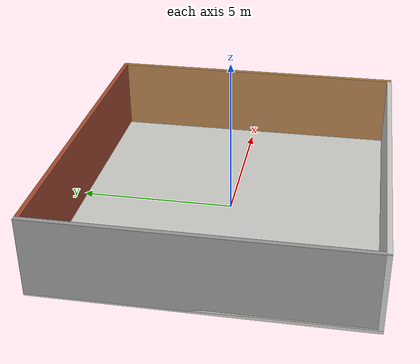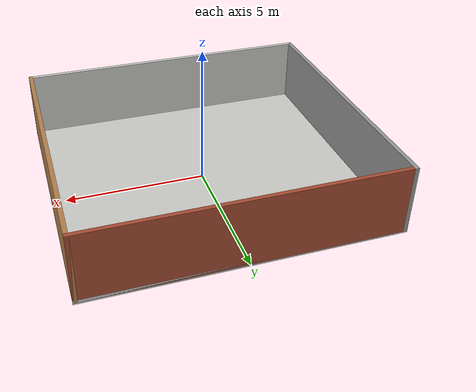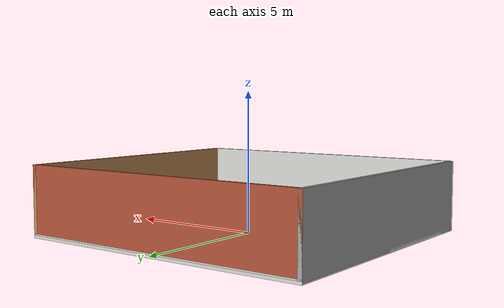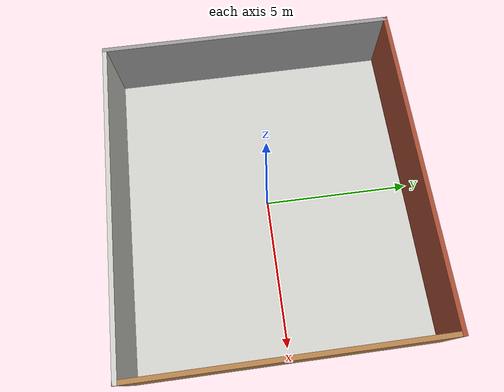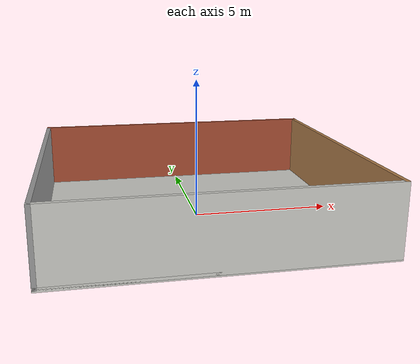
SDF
<?xml version='1.0'?>
<sdf version='1.6'>
  <model name='rwLab_old'>
    <link name='Floor_1'>
      <pose frame=''>0 0 0 0 -0 0</pose>
      <self_collide>0</self_collide>
      <kinematic>0</kinematic>
      <gravity>1</gravity>
      <inertial>
        <mass>1</mass>
        <pose frame=''>0 0 0 0 -0 0</pose>
        <inertia>
          <ixx>1</ixx>
          <ixy>0</ixy>
          <ixz>0</ixz>
          <iyy>1</iyy>
          <iyz>0</iyz>
          <izz>1</izz>
        </inertia>
      </inertial>
      <visual name='ModelPreview_1::Floor_1::visual_1'>
        <pose frame=''>0 0 0.05 0 -0 0</pose>
        <geometry>
          <box>
            <size>11 10 0.1</size>
          </box>
        </geometry>
        <material>
          <script>
            <uri>file://media/materials/scripts/gazebo.material</uri>
            <name>Gazebo/CeilingTiled</name>
          </script>
          <ambient>1 1 1 1</ambient>
          <diffuse>1 1 1 1</diffuse>
          <specular>0 0 0 1</specular>
          <emissive>0 0 0 1</emissive>
          <shader type='vertex'>
            <normal_map>__default__</normal_map>
          </shader>
        </material>
        <meta>
          <layer>0</layer>
        </meta>
        <cast_shadows>1</cast_shadows>
        <transparency>0</transparency>
      </visual>
      <visual name='ModelPreview_1::Floor_1::visual_2'>
        <pose frame=''>0 0 0.001 0 -0 0</pose>
        <geometry>
          <box>
            <size>11 10 0.1</size>
          </box>
        </geometry>
        <material>
          <script>
            <uri>file://media/materials/scripts/gazebo.material</uri>
            <name>Gazebo/CeilingTiled</name>
          </script>
          <ambient>1 1 1 1</ambient>
          <diffuse>1 1 1 1</diffuse>
          <specular>0 0 0 1</specular>
          <emissive>0 0 0 1</emissive>
          <shader type='vertex'>
            <normal_map>__default__</normal_map>
          </shader>
        </material>
        <meta>
          <layer>0</layer>
        </meta>
        <cast_shadows>1</cast_shadows>
        <transparency>0</transparency>
      </visual>
      <visual name='Floor_1_Visual'>
        <pose frame=''>0 0 0.001 0 -0 0</pose>
        <geometry>
          <box>
            <size>11 10 0.001</size>
          </box>
        </geometry>
        <material>
          <script>
            <uri>file://media/materials/scripts/gazebo.material</uri>
            <name>Gazebo/CeilingTiled</name>
          </script>
          <ambient>1 1 1 1</ambient>
          <diffuse>1 1 1 1</diffuse>
          <specular>0 0 0 1</specular>
          <emissive>0 0 0 1</emissive>
          <shader type='vertex'>
            <normal_map>__default__</normal_map>
          </shader>
        </material>
        <meta>
          <layer>0</layer>
        </meta>
        <cast_shadows>1</cast_shadows>
        <transparency>0</transparency>
      </visual>
      <collision name='Floor_1_Collision'>
        <laser_retro>0</laser_retro>
        <max_contacts>10</max_contacts>
        <pose frame=''>0 0 0.001 0 -0 0</pose>
        <geometry>
          <box>
            <size>11 10 0.001</size>
          </box>
        </geometry>
        <surface>
          <friction>
            <ode>
              <mu>1</mu>
              <mu2>1</mu2>
              <fdir1>0 0 0</fdir1>
              <slip1>0</slip1>
              <slip2>0</slip2>
            </ode>
            <torsional>
              <coefficient>1</coefficient>
              <patch_radius>0</patch_radius>
              <surface_radius>0</surface_radius>
              <use_patch_radius>1</use_patch_radius>
              <ode>
                <slip>0</slip>
              </ode>
            </torsional>
          </friction>
          <bounce>
            <restitution_coefficient>0</restitution_coefficient>
            <threshold>1e+06</threshold>
          </bounce>
          <contact>
            <collide_without_contact>0</collide_without_contact>
            <collide_without_contact_bitmask>1</collide_without_contact_bitmask>
            <collide_bitmask>1</collide_bitmask>
            <ode>
              <soft_cfm>0</soft_cfm>
              <soft_erp>0.2</soft_erp>
              <kp>1e+13</kp>
              <kd>1</kd>
              <max_vel>0.01</max_vel>
              <min_depth>0</min_depth>
            </ode>
            <bullet>
              <split_impulse>1</split_impulse>
              <split_impulse_penetration_threshold>-0.01</split_impulse_penetration_threshold>
              <soft_cfm>0</soft_cfm>
              <soft_erp>0.2</soft_erp>
              <kp>1e+13</kp>
              <kd>1</kd>
            </bullet>
          </contact>
        </surface>
      </collision>
    </link>
    <link name='Wall_12'>
      <pose frame=''>-5.425 0 0 0 -0 1.5708</pose>
      <self_collide>0</self_collide>
      <kinematic>0</kinematic>
      <visual name='Wall_12_Visual'>
        <pose frame=''>0 0 1.25 0 -0 0</pose>
        <geometry>
          <box>
            <size>10 0.15 2.5</size>
          </box>
        </geometry>
        <material>
          <script>
            <uri>file://media/materials/scripts/gazebo.material</uri>
            <name>Gazebo/Grey</name>
          </script>
          <ambient>1 1 1 1</ambient>
          <diffuse>0.7 0.7 0.7 1</diffuse>
          <specular>0.01 0.01 0.01 1</specular>
          <emissive>0 0 0 1</emissive>
        </material>
        <meta>
          <layer>0</layer>
        </meta>
        <cast_shadows>1</cast_shadows>
        <transparency>0</transparency>
      </visual>
      <collision name='Wall_12_Collision'>
        <laser_retro>0</laser_retro>
        <max_contacts>10</max_contacts>
        <pose frame=''>0 0 1.25 0 -0 0</pose>
        <geometry>
          <box>
            <size>10 0.15 2.5</size>
          </box>
        </geometry>
        <surface>
          <friction>
            <ode>
              <mu>1</mu>
              <mu2>1</mu2>
              <fdir1>0 0 0</fdir1>
              <slip1>0</slip1>
              <slip2>0</slip2>
            </ode>
            <torsional>
              <coefficient>1</coefficient>
              <patch_radius>0</patch_radius>
              <surface_radius>0</surface_radius>
              <use_patch_radius>1</use_patch_radius>
              <ode>
                <slip>0</slip>
              </ode>
            </torsional>
          </friction>
          <bounce>
            <restitution_coefficient>0</restitution_coefficient>
            <threshold>1e+06</threshold>
          </bounce>
          <contact>
            <collide_without_contact>0</collide_without_contact>
            <collide_without_contact_bitmask>1</collide_without_contact_bitmask>
            <collide_bitmask>1</collide_bitmask>
            <ode>
              <soft_cfm>0</soft_cfm>
              <soft_erp>0.2</soft_erp>
              <kp>1e+13</kp>
              <kd>1</kd>
              <max_vel>0.01</max_vel>
              <min_depth>0</min_depth>
            </ode>
            <bullet>
              <split_impulse>1</split_impulse>
              <split_impulse_penetration_threshold>-0.01</split_impulse_penetration_threshold>
              <soft_cfm>0</soft_cfm>
              <soft_erp>0.2</soft_erp>
              <kp>1e+13</kp>
              <kd>1</kd>
            </bullet>
          </contact>
        </surface>
      </collision>
    </link>
    <link name='Wall_13'>
      <pose frame=''>0 4.925 0 0 -0 0</pose>
      <self_collide>0</self_collide>
      <kinematic>0</kinematic>
      <visual name='Wall_13_Visual'>
        <pose frame=''>0 0 1.25 0 -0 0</pose>
        <geometry>
          <box>
            <size>11 0.15 2.5</size>
          </box>
        </geometry>
        <material>
          <script>
            <uri>file://media/materials/scripts/gazebo.material</uri>
            <name>Gazebo/Bricks</name>
          </script>
          <ambient>1 1 1 1</ambient>
          <diffuse>1 1 1 1</diffuse>
          <specular>0.2 0.2 0.2 1</specular>
          <emissive>0 0 0 1</emissive>
        </material>
        <meta>
          <layer>0</layer>
        </meta>
        <cast_shadows>1</cast_shadows>
        <transparency>0</transparency>
      </visual>
      <collision name='Wall_13_Collision'>
        <laser_retro>0</laser_retro>
        <max_contacts>10</max_contacts>
        <pose frame=''>0 0 1.25 0 -0 0</pose>
        <geometry>
          <box>
            <size>11 0.15 2.5</size>
          </box>
        </geometry>
        <surface>
          <friction>
            <ode>
              <mu>1</mu>
              <mu2>1</mu2>
              <fdir1>0 0 0</fdir1>
              <slip1>0</slip1>
              <slip2>0</slip2>
            </ode>
            <torsional>
              <coefficient>1</coefficient>
              <patch_radius>0</patch_radius>
              <surface_radius>0</surface_radius>
              <use_patch_radius>1</use_patch_radius>
              <ode>
                <slip>0</slip>
              </ode>
            </torsional>
          </friction>
          <bounce>
            <restitution_coefficient>0</restitution_coefficient>
            <threshold>1e+06</threshold>
          </bounce>
          <contact>
            <collide_without_contact>0</collide_without_contact>
            <collide_without_contact_bitmask>1</collide_without_contact_bitmask>
            <collide_bitmask>1</collide_bitmask>
            <ode>
              <soft_cfm>0</soft_cfm>
              <soft_erp>0.2</soft_erp>
              <kp>1e+13</kp>
              <kd>1</kd>
              <max_vel>0.01</max_vel>
              <min_depth>0</min_depth>
            </ode>
            <bullet>
              <split_impulse>1</split_impulse>
              <split_impulse_penetration_threshold>-0.01</split_impulse_penetration_threshold>
              <soft_cfm>0</soft_cfm>
              <soft_erp>0.2</soft_erp>
              <kp>1e+13</kp>
              <kd>1</kd>
            </bullet>
          </contact>
        </surface>
      </collision>
    </link>
    <link name='Wall_14'>
      <pose frame=''>5.425 0 0 0 0 -1.5708</pose>
      <self_collide>0</self_collide>
      <kinematic>0</kinematic>
      <visual name='Wall_14_Visual'>
        <pose frame=''>0 0 1.25 0 -0 0</pose>
        <geometry>
          <box>
            <size>10 0.15 2.5</size>
          </box>
        </geometry>
        <material>
          <script>
            <uri>file://media/materials/scripts/gazebo.material</uri>
            <name>Gazebo/Wood</name>
          </script>
          <ambient>1 1 1 1</ambient>
          <diffuse>1 1 1 1</diffuse>
          <specular>0.2 0.2 0.2 1</specular>
          <emissive>0 0 0 1</emissive>
        </material>
        <meta>
          <layer>0</layer>
        </meta>
        <cast_shadows>1</cast_shadows>
        <transparency>0</transparency>
      </visual>
      <collision name='Wall_14_Collision'>
        <laser_retro>0</laser_retro>
        <max_contacts>10</max_contacts>
        <pose frame=''>0 0 1.25 0 -0 0</pose>
        <geometry>
          <box>
            <size>10 0.15 2.5</size>
          </box>
        </geometry>
        <surface>
          <friction>
            <ode>
              <mu>1</mu>
              <mu2>1</mu2>
              <fdir1>0 0 0</fdir1>
              <slip1>0</slip1>
              <slip2>0</slip2>
            </ode>
            <torsional>
              <coefficient>1</coefficient>
              <patch_radius>0</patch_radius>
              <surface_radius>0</surface_radius>
              <use_patch_radius>1</use_patch_radius>
              <ode>
                <slip>0</slip>
              </ode>
            </torsional>
          </friction>
          <bounce>
            <restitution_coefficient>0</restitution_coefficient>
            <threshold>1e+06</threshold>
          </bounce>
          <contact>
            <collide_without_contact>0</collide_without_contact>
            <collide_without_contact_bitmask>1</collide_without_contact_bitmask>
            <collide_bitmask>1</collide_bitmask>
            <ode>
              <soft_cfm>0</soft_cfm>
              <soft_erp>0.2</soft_erp>
              <kp>1e+13</kp>
              <kd>1</kd>
              <max_vel>0.01</max_vel>
              <min_depth>0</min_depth>
            </ode>
            <bullet>
              <split_impulse>1</split_impulse>
              <split_impulse_penetration_threshold>-0.01</split_impulse_penetration_threshold>
              <soft_cfm>0</soft_cfm>
              <soft_erp>0.2</soft_erp>
              <kp>1e+13</kp>
              <kd>1</kd>
            </bullet>
          </contact>
        </surface>
      </collision>
    </link>
    <link name='Wall_15'>
      <pose frame=''>0 -4.925 0 0 -0 3.14159</pose>
      <self_collide>0</self_collide>
      <kinematic>0</kinematic>
      <visual name='Wall_15_Visual'>
        <pose frame=''>0 0 1.25 0 -0 0</pose>
        <geometry>
          <box>
            <size>11 0.15 2.5</size>
          </box>
        </geometry>
        <material>
          <script>
            <uri>file://media/materials/scripts/gazebo.material</uri>
            <name>Gazebo/CeilingTiled</name>
          </script>
          <ambient>1 1 1 1</ambient>
          <diffuse>1 1 1 1</diffuse>
          <specular>0 0 0 1</specular>
          <emissive>0 0 0 1</emissive>
        </material>
        <meta>
          <layer>0</layer>
        </meta>
        <cast_shadows>1</cast_shadows>
        <transparency>0</transparency>
      </visual>
      <collision name='Wall_15_Collision'>
        <laser_retro>0</laser_retro>
        <max_contacts>10</max_contacts>
        <pose frame=''>0 0 1.25 0 -0 0</pose>
        <geometry>
          <box>
            <size>11 0.15 2.5</size>
          </box>
        </geometry>
        <surface>
          <friction>
            <ode>
              <mu>1</mu>
              <mu2>1</mu2>
              <fdir1>0 0 0</fdir1>
              <slip1>0</slip1>
              <slip2>0</slip2>
            </ode>
            <torsional>
              <coefficient>1</coefficient>
              <patch_radius>0</patch_radius>
              <surface_radius>0</surface_radius>
              <use_patch_radius>1</use_patch_radius>
              <ode>
                <slip>0</slip>
              </ode>
            </torsional>
          </friction>
          <bounce>
            <restitution_coefficient>0</restitution_coefficient>
            <threshold>1e+06</threshold>
          </bounce>
          <contact>
            <collide_without_contact>0</collide_without_contact>
            <collide_without_contact_bitmask>1</collide_without_contact_bitmask>
            <collide_bitmask>1</collide_bitmask>
            <ode>
              <soft_cfm>0</soft_cfm>
              <soft_erp>0.2</soft_erp>
              <kp>1e+13</kp>
              <kd>1</kd>
              <max_vel>0.01</max_vel>
              <min_depth>0</min_depth>
            </ode>
            <bullet>
              <split_impulse>1</split_impulse>
              <split_impulse_penetration_threshold>-0.01</split_impulse_penetration_threshold>
              <soft_cfm>0</soft_cfm>
              <soft_erp>0.2</soft_erp>
              <kp>1e+13</kp>
              <kd>1</kd>
            </bullet>
          </contact>
        </surface>
      </collision>
    </link>
    <static>1</static>
    <allow_auto_disable>1</allow_auto_disable>
  </model>
</sdf>
